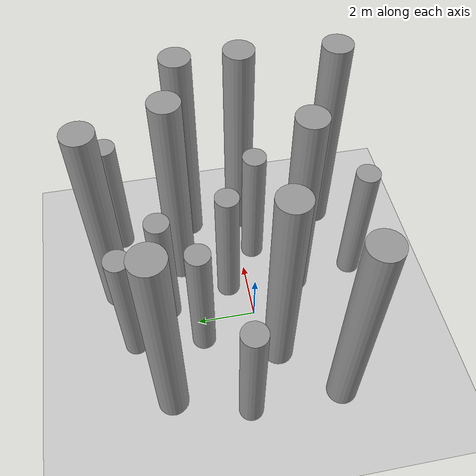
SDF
<sdf version="1.7">
 <world name="default">
  <light name="sun" type="directional">
   <pose>0 0 10 0 -0 0</pose>
   <diffuse>0.8 0.8 0.8 1</diffuse>
   <specular>0.2 0.2 0.2 1</specular>
   <attenuation>
    <range>1000</range>
    <constant>0.9</constant>
    <linear>0.01</linear>
    <quadratic>0.001</quadratic>
   </attenuation>
   <direction>-0.5 0.1 -0.9</direction>
   <spot><inner_angle>0</inner_angle><outer_angle>0</outer_angle><falloff>0</falloff></spot>
  </light>
  <model name="ground_plane">
   <static>1</static>
   <link name="link">
    <collision name="collision">
     <geometry><plane><normal>0 0 1</normal><size>100 100</size></plane></geometry>
     <surface><friction><ode><mu>100</mu><mu2>50</mu2></ode></friction></surface>
    </collision>
    <visual name="visual">
     <cast_shadows>0</cast_shadows>
     <geometry><plane><normal>0 0 1</normal><size>100 100</size></plane></geometry>
     <material>
      <script><uri>file://media/materials/scripts/gazebo.material</uri><name>Gazebo/Grey</name></script>
     </material>
    </visual>
   </link>
  </model>
  <gravity>0 0 -9.8</gravity>
  <magnetic_field>6e-06 2.3e-05 -4.2e-05</magnetic_field>
  <atmosphere type="adiabatic"/>
  <physics type="ode">
   <max_step_size>0.001</max_step_size>
   <real_time_factor>1</real_time_factor>
   <real_time_update_rate>1000</real_time_update_rate>
  </physics>
  <scene><ambient>0.4 0.4 0.4 1</ambient><background>0.7 0.7 0.7 1</background><shadows>1</shadows></scene>
  <audio><device>default</device></audio>
  <spherical_coordinates>
   <surface_model>EARTH_WGS84</surface_model>
   <latitude_deg>0</latitude_deg>
   <longitude_deg>0</longitude_deg>
   <elevation>0</elevation>
   <heading_deg>0</heading_deg>
  </spherical_coordinates>
  <model name="obstalces2"><static>0</static><pose>-1e-06 -0 1.49999 0 -0 0</pose></model>
  <model name="conc">
   <link name="link_0">
    <inertial>
     <mass>1</mass>
     <inertia><ixx>0.145833</ixx><ixy>0</ixy><ixz>0</ixz><iyy>0.145833</iyy><iyz>0</iyz><izz>0.125</izz></inertia>
    </inertial>
    <visual name="visual">
     <geometry><cylinder><radius>0.4</radius><length>0.1</length></cylinder></geometry>
     <material>
      <lighting>1</lighting>
      <script><uri>file://media/materials/scripts/gazebo.material</uri><name>Gazebo/Grey</name></script>
      <shader type="pixel"><normal_map>__default__</normal_map></shader>
      <ambient>0.753 0.11 0.157 1</ambient>
      <diffuse>0.878 0.106 0.141 1</diffuse>
      <specular>0.01 0.01 0.01 1</specular>
      <emissive>0 0 0 1</emissive>
     </material>
    </visual>
    <collision name="collision">
     <geometry><cylinder><radius>0.4</radius><length>0.1</length></cylinder></geometry>
     <surface>
      <friction>
       <ode><mu>1</mu><mu2>1</mu2><fdir1>0 0 0</fdir1><slip1>0</slip1><slip2>0</slip2></ode>
       <torsional>
        <coefficient>1</coefficient>
        <patch_radius>0</patch_radius>
        <surface_radius>0</surface_radius>
        <use_patch_radius>1</use_patch_radius>
        <ode><slip>0</slip></ode>
       </torsional>
      </friction>
      <bounce><restitution_coefficient>0</restitution_coefficient><threshold>1e+06</threshold></bounce>
      <contact>
       <collide_without_contact>0</collide_without_contact>
       <collide_without_contact_bitmask>1</collide_without_contact_bitmask>
       <collide_bitmask>1</collide_bitmask>
       <ode>
        <soft_cfm>0</soft_cfm>
        <soft_erp>0.2</soft_erp>
        <kp>1e+13</kp>
        <kd>1</kd>
        <max_vel>0.01</max_vel>
        <min_depth>0</min_depth>
       </ode>
       <bullet>
        <split_impulse>1</split_impulse>
        <split_impulse_penetration_threshold>-0.01</split_impulse_penetration_threshold>
        <soft_cfm>0</soft_cfm>
        <soft_erp>0.2</soft_erp>
        <kp>1e+13</kp>
        <kd>1</kd>
       </bullet>
      </contact>
     </surface>
    </collision>
   </link>
   <link name="link_1">
    <inertial>
     <mass>1</mass>
     <inertia><ixx>0.145833</ixx><ixy>0</ixy><ixz>0</ixz><iyy>0.145833</iyy><iyz>0</iyz><izz>0.125</izz></inertia>
    </inertial>
    <pose>-0 0 0.05 0 -0 0</pose>
    <visual name="visual">
     <geometry><cylinder><radius>0.05</radius><length>0.001</length></cylinder></geometry>
     <material>
      <lighting>1</lighting>
      <script><uri>file://media/materials/scripts/gazebo.material</uri><name>Gazebo/Grey</name></script>
      <shader type="pixel"><normal_map>__default__</normal_map></shader>
      <ambient>0.149 0.635 0.412 1</ambient>
      <diffuse>0.2 0.82 0.478 1</diffuse>
      <specular>0.01 0.01 0.01 1</specular>
      <emissive>0 0 0 1</emissive>
     </material>
    </visual>
    <collision name="collision">
     <geometry><cylinder><radius>0.05</radius><length>0.001</length></cylinder></geometry>
     <surface>
      <friction>
       <ode><mu>1</mu><mu2>1</mu2><fdir1>0 0 0</fdir1><slip1>0</slip1><slip2>0</slip2></ode>
       <torsional>
        <coefficient>1</coefficient>
        <patch_radius>0</patch_radius>
        <surface_radius>0</surface_radius>
        <use_patch_radius>1</use_patch_radius>
        <ode><slip>0</slip></ode>
       </torsional>
      </friction>
      <bounce><restitution_coefficient>0</restitution_coefficient><threshold>1e+06</threshold></bounce>
      <contact>
       <collide_without_contact>0</collide_without_contact>
       <collide_without_contact_bitmask>1</collide_without_contact_bitmask>
       <collide_bitmask>1</collide_bitmask>
       <ode>
        <soft_cfm>0</soft_cfm>
        <soft_erp>0.2</soft_erp>
        <kp>1e+13</kp>
        <kd>1</kd>
        <max_vel>0.01</max_vel>
        <min_depth>0</min_depth>
       </ode>
       <bullet>
        <split_impulse>1</split_impulse>
        <split_impulse_penetration_threshold>-0.01</split_impulse_penetration_threshold>
        <soft_cfm>0</soft_cfm>
        <soft_erp>0.2</soft_erp>
        <kp>1e+13</kp>
        <kd>1</kd>
       </bullet>
      </contact>
     </surface>
    </collision>
   </link>
   <static>0</static>
   <joint name="joint" type="fixed">
    <parent>link_0</parent>
    <child>conc::link_1</child>
    <pose>0 0 0.1 0 -0 0</pose>
    <axis><xyz>0 0 1</xyz><limit><lower>-1e+16</lower><upper>1e+16</upper></limit></axis>
   </joint>
   <pose>4 3 0.05 0 -0 0</pose>
  </model>
  <model name="unit_cylinder_7_clone_0_clone_0">
   <link name="link">
    <inertial>
     <mass>100</mass>
     <inertia><ixx>14.5833</ixx><ixy>0</ixy><ixz>0</ixz><iyy>14.5833</iyy><iyz>0</iyz><izz>12.5</izz></inertia>
    </inertial>
    <visual name="visual">
     <geometry><cylinder><radius>0.5</radius><length>8</length></cylinder></geometry>
     <material>
      <script><name>Gazebo/Grey</name><uri>file://media/materials/scripts/gazebo.material</uri></script>
      <shader type="pixel"><normal_map>__default__</normal_map></shader>
      <ambient>0.3 0.3 0.3 1</ambient>
      <diffuse>0.7 0.7 0.7 1</diffuse>
      <specular>0.01 0.01 0.01 1</specular>
      <emissive>0 0 0 1</emissive>
     </material>
    </visual>
    <collision name="collision">
     <geometry><cylinder><radius>0.5</radius><length>8</length></cylinder></geometry>
     <surface>
      <friction>
       <ode><mu>1</mu><mu2>1</mu2><fdir1>0 0 0</fdir1><slip1>0</slip1><slip2>0</slip2></ode>
       <torsional>
        <coefficient>1</coefficient>
        <patch_radius>0</patch_radius>
        <surface_radius>0</surface_radius>
        <use_patch_radius>1</use_patch_radius>
        <ode><slip>0</slip></ode>
       </torsional>
      </friction>
      <bounce><restitution_coefficient>0</restitution_coefficient><threshold>1e+06</threshold></bounce>
      <contact>
       <collide_without_contact>0</collide_without_contact>
       <collide_without_contact_bitmask>1</collide_without_contact_bitmask>
       <collide_bitmask>1</collide_bitmask>
       <ode>
        <soft_cfm>0</soft_cfm>
        <soft_erp>0.2</soft_erp>
        <kp>1e+13</kp>
        <kd>1</kd>
        <max_vel>0.01</max_vel>
        <min_depth>0</min_depth>
       </ode>
       <bullet>
        <split_impulse>1</split_impulse>
        <split_impulse_penetration_threshold>-0.01</split_impulse_penetration_threshold>
        <soft_cfm>0</soft_cfm>
        <soft_erp>0.2</soft_erp>
        <kp>1e+13</kp>
        <kd>1</kd>
       </bullet>
      </contact>
     </surface>
    </collision>
   </link>
   <static>0</static>
   <pose>1.68705 4.65043 4 0 -0 0.027632</pose>
  </model>
  <model name="unit_cylinder_7_clone_0_clone_1_clone">
   <link name="link">
    <inertial>
     <mass>100</mass>
     <inertia><ixx>14.5833</ixx><ixy>0</ixy><ixz>0</ixz><iyy>14.5833</iyy><iyz>0</iyz><izz>12.5</izz></inertia>
    </inertial>
    <visual name="visual">
     <geometry><cylinder><radius>0.5</radius><length>8</length></cylinder></geometry>
     <material>
      <script><name>Gazebo/Grey</name><uri>file://media/materials/scripts/gazebo.material</uri></script>
      <shader type="pixel"><normal_map>__default__</normal_map></shader>
      <ambient>0.3 0.3 0.3 1</ambient>
      <diffuse>0.7 0.7 0.7 1</diffuse>
      <specular>0.01 0.01 0.01 1</specular>
      <emissive>0 0 0 1</emissive>
     </material>
    </visual>
    <collision name="collision">
     <geometry><cylinder><radius>0.5</radius><length>8</length></cylinder></geometry>
     <surface>
      <friction>
       <ode><mu>1</mu><mu2>1</mu2><fdir1>0 0 0</fdir1><slip1>0</slip1><slip2>0</slip2></ode>
       <torsional>
        <coefficient>1</coefficient>
        <patch_radius>0</patch_radius>
        <surface_radius>0</surface_radius>
        <use_patch_radius>1</use_patch_radius>
        <ode><slip>0</slip></ode>
       </torsional>
      </friction>
      <bounce><restitution_coefficient>0</restitution_coefficient><threshold>1e+06</threshold></bounce>
      <contact>
       <collide_without_contact>0</collide_without_contact>
       <collide_without_contact_bitmask>1</collide_without_contact_bitmask>
       <collide_bitmask>1</collide_bitmask>
       <ode>
        <soft_cfm>0</soft_cfm>
        <soft_erp>0.2</soft_erp>
        <kp>1e+13</kp>
        <kd>1</kd>
        <max_vel>0.01</max_vel>
        <min_depth>0</min_depth>
       </ode>
       <bullet>
        <split_impulse>1</split_impulse>
        <split_impulse_penetration_threshold>-0.01</split_impulse_penetration_threshold>
        <soft_cfm>0</soft_cfm>
        <soft_erp>0.2</soft_erp>
        <kp>1e+13</kp>
        <kd>1</kd>
       </bullet>
      </contact>
     </surface>
    </collision>
   </link>
   <static>0</static>
   <pose>-2.72618 3.23406 4 0 -0 0.027531</pose>
  </model>
  <model name="unit_cylinder_5_clone_clone">
   <link name="link">
    <inertial>
     <mass>10</mass>
     <inertia><ixx>21.2333</ixx><ixy>0</ixy><ixz>0</ixz><iyy>21.2333</iyy><iyz>0</iyz><izz>0.8</izz></inertia>
    </inertial>
    <visual name="visual">
     <geometry><cylinder><radius>0.4</radius><length>5</length></cylinder></geometry>
     <material>
      <script><name>Gazebo/Grey</name><uri>file://media/materials/scripts/gazebo.material</uri></script>
      <shader type="pixel"><normal_map>__default__</normal_map></shader>
      <ambient>0.3 0.3 0.3 1</ambient>
      <diffuse>0.7 0.7 0.7 1</diffuse>
      <specular>0.01 0.01 0.01 1</specular>
      <emissive>0 0 0 1</emissive>
     </material>
    </visual>
    <collision name="collision">
     <geometry><cylinder><radius>0.4</radius><length>5</length></cylinder></geometry>
     <surface>
      <friction>
       <ode><mu>1</mu><mu2>1</mu2><fdir1>0 0 0</fdir1><slip1>0</slip1><slip2>0</slip2></ode>
       <torsional>
        <coefficient>1</coefficient>
        <patch_radius>0</patch_radius>
        <surface_radius>0</surface_radius>
        <use_patch_radius>1</use_patch_radius>
        <ode><slip>0</slip></ode>
       </torsional>
      </friction>
      <bounce><restitution_coefficient>0</restitution_coefficient><threshold>1e+06</threshold></bounce>
      <contact>
       <collide_without_contact>0</collide_without_contact>
       <collide_without_contact_bitmask>1</collide_without_contact_bitmask>
       <collide_bitmask>1</collide_bitmask>
       <ode>
        <soft_cfm>0</soft_cfm>
        <soft_erp>0.2</soft_erp>
        <kp>1e+13</kp>
        <kd>1</kd>
        <max_vel>0.01</max_vel>
        <min_depth>0</min_depth>
       </ode>
       <bullet>
        <split_impulse>1</split_impulse>
        <split_impulse_penetration_threshold>-0.01</split_impulse_penetration_threshold>
        <soft_cfm>0</soft_cfm>
        <soft_erp>0.2</soft_erp>
        <kp>1e+13</kp>
        <kd>1</kd>
       </bullet>
      </contact>
     </surface>
    </collision>
   </link>
   <static>0</static>
   <pose>4.17132 4.31449 2.5 0 -0 1e-06</pose>
  </model>
  <model name="unit_cylinder_2_clone_clone_clone_0_clone">
   <link name="link">
    <inertial>
     <mass>10</mass>
     <inertia><ixx>21.2333</ixx><ixy>0</ixy><ixz>0</ixz><iyy>21.2333</iyy><iyz>0</iyz><izz>0.8</izz></inertia>
    </inertial>
    <visual name="visual">
     <geometry><cylinder><radius>0.4</radius><length>5</length></cylinder></geometry>
     <material>
      <script><name>Gazebo/Grey</name><uri>file://media/materials/scripts/gazebo.material</uri></script>
      <shader type="pixel"><normal_map>__default__</normal_map></shader>
      <ambient>0.3 0.3 0.3 1</ambient>
      <diffuse>0.7 0.7 0.7 1</diffuse>
      <specular>0.01 0.01 0.01 1</specular>
      <emissive>0 0 0 1</emissive>
     </material>
    </visual>
    <collision name="collision">
     <geometry><cylinder><radius>0.4</radius><length>5</length></cylinder></geometry>
     <surface>
      <friction>
       <ode><mu>1</mu><mu2>1</mu2><fdir1>0 0 0</fdir1><slip1>0</slip1><slip2>0</slip2></ode>
       <torsional>
        <coefficient>1</coefficient>
        <patch_radius>0</patch_radius>
        <surface_radius>0</surface_radius>
        <use_patch_radius>1</use_patch_radius>
        <ode><slip>0</slip></ode>
       </torsional>
      </friction>
      <bounce><restitution_coefficient>0</restitution_coefficient><threshold>1e+06</threshold></bounce>
      <contact>
       <collide_without_contact>0</collide_without_contact>
       <collide_without_contact_bitmask>1</collide_without_contact_bitmask>
       <collide_bitmask>1</collide_bitmask>
       <ode>
        <soft_cfm>0</soft_cfm>
        <soft_erp>0.2</soft_erp>
        <kp>1e+13</kp>
        <kd>1</kd>
        <max_vel>0.01</max_vel>
        <min_depth>0</min_depth>
       </ode>
       <bullet>
        <split_impulse>1</split_impulse>
        <split_impulse_penetration_threshold>-0.01</split_impulse_penetration_threshold>
        <soft_cfm>0</soft_cfm>
        <soft_erp>0.2</soft_erp>
        <kp>1e+13</kp>
        <kd>1</kd>
       </bullet>
      </contact>
     </surface>
    </collision>
   </link>
   <static>0</static>
   <pose>-0.445907 4.21097 2.5 0 -0 1e-06</pose>
  </model>
  <model name="unit_cylinder_0_clone_clone">
   <link name="link">
    <inertial>
     <mass>10</mass>
     <inertia><ixx>21.2333</ixx><ixy>0</ixy><ixz>0</ixz><iyy>21.2333</iyy><iyz>0</iyz><izz>0.8</izz></inertia>
    </inertial>
    <visual name="visual">
     <geometry><cylinder><radius>0.4</radius><length>5</length></cylinder></geometry>
     <material>
      <script><name>Gazebo/Grey</name><uri>file://media/materials/scripts/gazebo.material</uri></script>
      <shader type="pixel"><normal_map>__default__</normal_map></shader>
      <ambient>0.3 0.3 0.3 1</ambient>
      <diffuse>0.7 0.7 0.7 1</diffuse>
      <specular>0.01 0.01 0.01 1</specular>
      <emissive>0 0 0 1</emissive>
     </material>
    </visual>
    <collision name="collision">
     <geometry><cylinder><radius>0.4</radius><length>5</length></cylinder></geometry>
     <surface>
      <friction>
       <ode><mu>1</mu><mu2>1</mu2><fdir1>0 0 0</fdir1><slip1>0</slip1><slip2>0</slip2></ode>
       <torsional>
        <coefficient>1</coefficient>
        <patch_radius>0</patch_radius>
        <surface_radius>0</surface_radius>
        <use_patch_radius>1</use_patch_radius>
        <ode><slip>0</slip></ode>
       </torsional>
      </friction>
      <bounce><restitution_coefficient>0</restitution_coefficient><threshold>1e+06</threshold></bounce>
      <contact>
       <collide_without_contact>0</collide_without_contact>
       <collide_without_contact_bitmask>1</collide_without_contact_bitmask>
       <collide_bitmask>1</collide_bitmask>
       <ode>
        <soft_cfm>0</soft_cfm>
        <soft_erp>0.2</soft_erp>
        <kp>1e+13</kp>
        <kd>1</kd>
        <max_vel>0.01</max_vel>
        <min_depth>0</min_depth>
       </ode>
       <bullet>
        <split_impulse>1</split_impulse>
        <split_impulse_penetration_threshold>-0.01</split_impulse_penetration_threshold>
        <soft_cfm>0</soft_cfm>
        <soft_erp>0.2</soft_erp>
        <kp>1e+13</kp>
        <kd>1</kd>
       </bullet>
      </contact>
     </surface>
    </collision>
   </link>
   <static>0</static>
   <pose>-1.47937 -3.57958 2.5 0 -0 1e-06</pose>
  </model>
  <model name="unit_cylinder_7_clone_clone_clone_clone_clone_0">
   <link name="link">
    <inertial>
     <mass>100</mass>
     <inertia><ixx>14.5833</ixx><ixy>0</ixy><ixz>0</ixz><iyy>14.5833</iyy><iyz>0</iyz><izz>12.5</izz></inertia>
    </inertial>
    <visual name="visual">
     <geometry><cylinder><radius>0.5</radius><length>8</length></cylinder></geometry>
     <material>
      <script><name>Gazebo/Grey</name><uri>file://media/materials/scripts/gazebo.material</uri></script>
      <shader type="pixel"><normal_map>__default__</normal_map></shader>
      <ambient>0.3 0.3 0.3 1</ambient>
      <diffuse>0.7 0.7 0.7 1</diffuse>
      <specular>0.01 0.01 0.01 1</specular>
      <emissive>0 0 0 1</emissive>
     </material>
    </visual>
    <collision name="collision">
     <geometry><cylinder><radius>0.5</radius><length>8</length></cylinder></geometry>
     <surface>
      <friction>
       <ode><mu>1</mu><mu2>1</mu2><fdir1>0 0 0</fdir1><slip1>0</slip1><slip2>0</slip2></ode>
       <torsional>
        <coefficient>1</coefficient>
        <patch_radius>0</patch_radius>
        <surface_radius>0</surface_radius>
        <use_patch_radius>1</use_patch_radius>
        <ode><slip>0</slip></ode>
       </torsional>
      </friction>
      <bounce><restitution_coefficient>0</restitution_coefficient><threshold>1e+06</threshold></bounce>
      <contact>
       <collide_without_contact>0</collide_without_contact>
       <collide_without_contact_bitmask>1</collide_without_contact_bitmask>
       <collide_bitmask>1</collide_bitmask>
       <ode>
        <soft_cfm>0</soft_cfm>
        <soft_erp>0.2</soft_erp>
        <kp>1e+13</kp>
        <kd>1</kd>
        <max_vel>0.01</max_vel>
        <min_depth>0</min_depth>
       </ode>
       <bullet>
        <split_impulse>1</split_impulse>
        <split_impulse_penetration_threshold>-0.01</split_impulse_penetration_threshold>
        <soft_cfm>0</soft_cfm>
        <soft_erp>0.2</soft_erp>
        <kp>1e+13</kp>
        <kd>1</kd>
       </bullet>
      </contact>
     </surface>
    </collision>
   </link>
   <static>0</static>
   <pose>4.16454 -3.29786 4 0 -0 0.027411</pose>
  </model>
  <model name="unit_cylinder_0_clone_clone_clone_0">
   <link name="link">
    <inertial>
     <mass>10</mass>
     <inertia><ixx>21.2333</ixx><ixy>0</ixy><ixz>0</ixz><iyy>21.2333</iyy><iyz>0</iyz><izz>0.8</izz></inertia>
    </inertial>
    <visual name="visual">
     <geometry><cylinder><radius>0.4</radius><length>5</length></cylinder></geometry>
     <material>
      <script><name>Gazebo/Grey</name><uri>file://media/materials/scripts/gazebo.material</uri></script>
      <shader type="pixel"><normal_map>__default__</normal_map></shader>
      <ambient>0.3 0.3 0.3 1</ambient>
      <diffuse>0.7 0.7 0.7 1</diffuse>
      <specular>0.01 0.01 0.01 1</specular>
      <emissive>0 0 0 1</emissive>
     </material>
    </visual>
    <collision name="collision">
     <geometry><cylinder><radius>0.4</radius><length>5</length></cylinder></geometry>
     <surface>
      <friction>
       <ode><mu>1</mu><mu2>1</mu2><fdir1>0 0 0</fdir1><slip1>0</slip1><slip2>0</slip2></ode>
       <torsional>
        <coefficient>1</coefficient>
        <patch_radius>0</patch_radius>
        <surface_radius>0</surface_radius>
        <use_patch_radius>1</use_patch_radius>
        <ode><slip>0</slip></ode>
       </torsional>
      </friction>
      <bounce><restitution_coefficient>0</restitution_coefficient><threshold>1e+06</threshold></bounce>
      <contact>
       <collide_without_contact>0</collide_without_contact>
       <collide_without_contact_bitmask>1</collide_without_contact_bitmask>
       <collide_bitmask>1</collide_bitmask>
       <ode>
        <soft_cfm>0</soft_cfm>
        <soft_erp>0.2</soft_erp>
        <kp>1e+13</kp>
        <kd>1</kd>
        <max_vel>0.01</max_vel>
        <min_depth>0</min_depth>
       </ode>
       <bullet>
        <split_impulse>1</split_impulse>
        <split_impulse_penetration_threshold>-0.01</split_impulse_penetration_threshold>
        <soft_cfm>0</soft_cfm>
        <soft_erp>0.2</soft_erp>
        <kp>1e+13</kp>
        <kd>1</kd>
       </bullet>
      </contact>
     </surface>
    </collision>
   </link>
   <static>0</static>
   <pose>1.44603 -3.90236 2.5 0 -0 1e-06</pose>
  </model>
  <model name="unit_cylinder_7_clone_clone_clone_0_clone">
   <link name="link">
    <inertial>
     <mass>100</mass>
     <inertia><ixx>14.5833</ixx><ixy>0</ixy><ixz>0</ixz><iyy>14.5833</iyy><iyz>0</iyz><izz>12.5</izz></inertia>
    </inertial>
    <visual name="visual">
     <geometry><cylinder><radius>0.5</radius><length>8</length></cylinder></geometry>
     <material>
      <script><name>Gazebo/Grey</name><uri>file://media/materials/scripts/gazebo.material</uri></script>
      <shader type="pixel"><normal_map>__default__</normal_map></shader>
      <ambient>0.3 0.3 0.3 1</ambient>
      <diffuse>0.7 0.7 0.7 1</diffuse>
      <specular>0.01 0.01 0.01 1</specular>
      <emissive>0 0 0 1</emissive>
     </material>
    </visual>
    <collision name="collision">
     <geometry><cylinder><radius>0.5</radius><length>8</length></cylinder></geometry>
     <surface>
      <friction>
       <ode><mu>1</mu><mu2>1</mu2><fdir1>0 0 0</fdir1><slip1>0</slip1><slip2>0</slip2></ode>
       <torsional>
        <coefficient>1</coefficient>
        <patch_radius>0</patch_radius>
        <surface_radius>0</surface_radius>
        <use_patch_radius>1</use_patch_radius>
        <ode><slip>0</slip></ode>
       </torsional>
      </friction>
      <bounce><restitution_coefficient>0</restitution_coefficient><threshold>1e+06</threshold></bounce>
      <contact>
       <collide_without_contact>0</collide_without_contact>
       <collide_without_contact_bitmask>1</collide_without_contact_bitmask>
       <collide_bitmask>1</collide_bitmask>
       <ode>
        <soft_cfm>0</soft_cfm>
        <soft_erp>0.2</soft_erp>
        <kp>1e+13</kp>
        <kd>1</kd>
        <max_vel>0.01</max_vel>
        <min_depth>0</min_depth>
       </ode>
       <bullet>
        <split_impulse>1</split_impulse>
        <split_impulse_penetration_threshold>-0.01</split_impulse_penetration_threshold>
        <soft_cfm>0</soft_cfm>
        <soft_erp>0.2</soft_erp>
        <kp>1e+13</kp>
        <kd>1</kd>
       </bullet>
      </contact>
     </surface>
    </collision>
   </link>
   <static>0</static>
   <pose>-3.36974 -2.23879 4 0 -0 0.027696</pose>
  </model>
  <model name="unit_cylinder_2_clone_clone_clone_0_clone_clone">
   <link name="link">
    <inertial>
     <mass>10</mass>
     <inertia><ixx>21.2333</ixx><ixy>0</ixy><ixz>0</ixz><iyy>21.2333</iyy><iyz>0</iyz><izz>0.8</izz></inertia>
    </inertial>
    <visual name="visual">
     <geometry><cylinder><radius>0.4</radius><length>5</length></cylinder></geometry>
     <material>
      <script><name>Gazebo/Grey</name><uri>file://media/materials/scripts/gazebo.material</uri></script>
      <shader type="pixel"><normal_map>__default__</normal_map></shader>
      <ambient>0.3 0.3 0.3 1</ambient>
      <diffuse>0.7 0.7 0.7 1</diffuse>
      <specular>0.01 0.01 0.01 1</specular>
      <emissive>0 0 0 1</emissive>
     </material>
    </visual>
    <collision name="collision">
     <geometry><cylinder><radius>0.4</radius><length>5</length></cylinder></geometry>
     <surface>
      <friction>
       <ode><mu>1</mu><mu2>1</mu2><fdir1>0 0 0</fdir1><slip1>0</slip1><slip2>0</slip2></ode>
       <torsional>
        <coefficient>1</coefficient>
        <patch_radius>0</patch_radius>
        <surface_radius>0</surface_radius>
        <use_patch_radius>1</use_patch_radius>
        <ode><slip>0</slip></ode>
       </torsional>
      </friction>
      <bounce><restitution_coefficient>0</restitution_coefficient><threshold>1e+06</threshold></bounce>
      <contact>
       <collide_without_contact>0</collide_without_contact>
       <collide_without_contact_bitmask>1</collide_without_contact_bitmask>
       <collide_bitmask>1</collide_bitmask>
       <ode>
        <soft_cfm>0</soft_cfm>
        <soft_erp>0.2</soft_erp>
        <kp>1e+13</kp>
        <kd>1</kd>
        <max_vel>0.01</max_vel>
        <min_depth>0</min_depth>
       </ode>
       <bullet>
        <split_impulse>1</split_impulse>
        <split_impulse_penetration_threshold>-0.01</split_impulse_penetration_threshold>
        <soft_cfm>0</soft_cfm>
        <soft_erp>0.2</soft_erp>
        <kp>1e+13</kp>
        <kd>1</kd>
       </bullet>
      </contact>
     </surface>
    </collision>
   </link>
   <static>0</static>
   <pose>0.695509 2.93596 2.5 0 -0 1e-06</pose>
  </model>
  <model name="unit_cylinder_0_clone_clone_clone_clone_0_clone_clone">
   <link name="link">
    <inertial>
     <mass>10</mass>
     <inertia><ixx>21.2333</ixx><ixy>0</ixy><ixz>0</ixz><iyy>21.2333</iyy><iyz>0</iyz><izz>0.8</izz></inertia>
    </inertial>
    <visual name="visual">
     <geometry><cylinder><radius>0.4</radius><length>5</length></cylinder></geometry>
     <material>
      <script><name>Gazebo/Grey</name><uri>file://media/materials/scripts/gazebo.material</uri></script>
      <shader type="pixel"><normal_map>__default__</normal_map></shader>
      <ambient>0.3 0.3 0.3 1</ambient>
      <diffuse>0.7 0.7 0.7 1</diffuse>
      <specular>0.01 0.01 0.01 1</specular>
      <emissive>0 0 0 1</emissive>
     </material>
    </visual>
    <collision name="collision">
     <geometry><cylinder><radius>0.4</radius><length>5</length></cylinder></geometry>
     <surface>
      <friction>
       <ode><mu>1</mu><mu2>1</mu2><fdir1>0 0 0</fdir1><slip1>0</slip1><slip2>0</slip2></ode>
       <torsional>
        <coefficient>1</coefficient>
        <patch_radius>0</patch_radius>
        <surface_radius>0</surface_radius>
        <use_patch_radius>1</use_patch_radius>
        <ode><slip>0</slip></ode>
       </torsional>
      </friction>
      <bounce><restitution_coefficient>0</restitution_coefficient><threshold>1e+06</threshold></bounce>
      <contact>
       <collide_without_contact>0</collide_without_contact>
       <collide_without_contact_bitmask>1</collide_without_contact_bitmask>
       <collide_bitmask>1</collide_bitmask>
       <ode>
        <soft_cfm>0</soft_cfm>
        <soft_erp>0.2</soft_erp>
        <kp>1e+13</kp>
        <kd>1</kd>
        <max_vel>0.01</max_vel>
        <min_depth>0</min_depth>
       </ode>
       <bullet>
        <split_impulse>1</split_impulse>
        <split_impulse_penetration_threshold>-0.01</split_impulse_penetration_threshold>
        <soft_cfm>0</soft_cfm>
        <soft_erp>0.2</soft_erp>
        <kp>1e+13</kp>
        <kd>1</kd>
       </bullet>
      </contact>
     </surface>
    </collision>
   </link>
   <static>0</static>
   <pose>-0.666522 1.90321 2.5 0 -0 1e-06</pose>
  </model>
  <model name="unit_cylinder_7_clone_clone_clone_clone_clone_1_clone_clone_clone">
   <link name="link">
    <inertial>
     <mass>100</mass>
     <inertia><ixx>14.5833</ixx><ixy>0</ixy><ixz>0</ixz><iyy>14.5833</iyy><iyz>0</iyz><izz>12.5</izz></inertia>
    </inertial>
    <visual name="visual">
     <geometry><cylinder><radius>0.5</radius><length>8</length></cylinder></geometry>
     <material>
      <script><name>Gazebo/Grey</name><uri>file://media/materials/scripts/gazebo.material</uri></script>
      <shader type="pixel"><normal_map>__default__</normal_map></shader>
      <ambient>0.3 0.3 0.3 1</ambient>
      <diffuse>0.7 0.7 0.7 1</diffuse>
      <specular>0.01 0.01 0.01 1</specular>
      <emissive>0 0 0 1</emissive>
     </material>
    </visual>
    <collision name="collision">
     <geometry><cylinder><radius>0.5</radius><length>8</length></cylinder></geometry>
     <surface>
      <friction>
       <ode><mu>1</mu><mu2>1</mu2><fdir1>0 0 0</fdir1><slip1>0</slip1><slip2>0</slip2></ode>
       <torsional>
        <coefficient>1</coefficient>
        <patch_radius>0</patch_radius>
        <surface_radius>0</surface_radius>
        <use_patch_radius>1</use_patch_radius>
        <ode><slip>0</slip></ode>
       </torsional>
      </friction>
      <bounce><restitution_coefficient>0</restitution_coefficient><threshold>1e+06</threshold></bounce>
      <contact>
       <collide_without_contact>0</collide_without_contact>
       <collide_without_contact_bitmask>1</collide_without_contact_bitmask>
       <collide_bitmask>1</collide_bitmask>
       <ode>
        <soft_cfm>0</soft_cfm>
        <soft_erp>0.2</soft_erp>
        <kp>1e+13</kp>
        <kd>1</kd>
        <max_vel>0.01</max_vel>
        <min_depth>0</min_depth>
       </ode>
       <bullet>
        <split_impulse>1</split_impulse>
        <split_impulse_penetration_threshold>-0.01</split_impulse_penetration_threshold>
        <soft_cfm>0</soft_cfm>
        <soft_erp>0.2</soft_erp>
        <kp>1e+13</kp>
        <kd>1</kd>
       </bullet>
      </contact>
     </surface>
    </collision>
   </link>
   <static>0</static>
   <pose>-1.61043 -0.505486 4 0 -0 0.0265</pose>
  </model>
  <model name="unit_cylinder_0_clone_clone_clone_clone_0_clone_clone_clone">
   <link name="link">
    <inertial>
     <mass>10</mass>
     <inertia><ixx>21.2333</ixx><ixy>0</ixy><ixz>0</ixz><iyy>21.2333</iyy><iyz>0</iyz><izz>0.8</izz></inertia>
    </inertial>
    <visual name="visual">
     <geometry><cylinder><radius>0.4</radius><length>5</length></cylinder></geometry>
     <material>
      <script><name>Gazebo/Grey</name><uri>file://media/materials/scripts/gazebo.material</uri></script>
      <shader type="pixel"><normal_map>__default__</normal_map></shader>
      <ambient>0.3 0.3 0.3 1</ambient>
      <diffuse>0.7 0.7 0.7 1</diffuse>
      <specular>0.01 0.01 0.01 1</specular>
      <emissive>0 0 0 1</emissive>
     </material>
    </visual>
    <collision name="collision">
     <geometry><cylinder><radius>0.4</radius><length>5</length></cylinder></geometry>
     <surface>
      <friction>
       <ode><mu>1</mu><mu2>1</mu2><fdir1>0 0 0</fdir1><slip1>0</slip1><slip2>0</slip2></ode>
       <torsional>
        <coefficient>1</coefficient>
        <patch_radius>0</patch_radius>
        <surface_radius>0</surface_radius>
        <use_patch_radius>1</use_patch_radius>
        <ode><slip>0</slip></ode>
       </torsional>
      </friction>
      <bounce><restitution_coefficient>0</restitution_coefficient><threshold>1e+06</threshold></bounce>
      <contact>
       <collide_without_contact>0</collide_without_contact>
       <collide_without_contact_bitmask>1</collide_without_contact_bitmask>
       <collide_bitmask>1</collide_bitmask>
       <ode>
        <soft_cfm>0</soft_cfm>
        <soft_erp>0.2</soft_erp>
        <kp>1e+13</kp>
        <kd>1</kd>
        <max_vel>0.01</max_vel>
        <min_depth>0</min_depth>
       </ode>
       <bullet>
        <split_impulse>1</split_impulse>
        <split_impulse_penetration_threshold>-0.01</split_impulse_penetration_threshold>
        <soft_cfm>0</soft_cfm>
        <soft_erp>0.2</soft_erp>
        <kp>1e+13</kp>
        <kd>1</kd>
       </bullet>
      </contact>
     </surface>
    </collision>
   </link>
   <static>0</static>
   <pose>-3.46789 0.807121 2.5 0 -0 1e-06</pose>
  </model>
  <model name="unit_cylinder_7_clone_clone_clone_2_clone_clone">
   <link name="link">
    <inertial>
     <mass>100</mass>
     <inertia><ixx>14.5833</ixx><ixy>0</ixy><ixz>0</ixz><iyy>14.5833</iyy><iyz>0</iyz><izz>12.5</izz></inertia>
    </inertial>
    <visual name="visual">
     <geometry><cylinder><radius>0.5</radius><length>8</length></cylinder></geometry>
     <material>
      <script><name>Gazebo/Grey</name><uri>file://media/materials/scripts/gazebo.material</uri></script>
      <shader type="pixel"><normal_map>__default__</normal_map></shader>
      <ambient>0.3 0.3 0.3 1</ambient>
      <diffuse>0.7 0.7 0.7 1</diffuse>
      <specular>0.01 0.01 0.01 1</specular>
      <emissive>0 0 0 1</emissive>
     </material>
    </visual>
    <collision name="collision">
     <geometry><cylinder><radius>0.5</radius><length>8</length></cylinder></geometry>
     <surface>
      <friction>
       <ode><mu>1</mu><mu2>1</mu2><fdir1>0 0 0</fdir1><slip1>0</slip1><slip2>0</slip2></ode>
       <torsional>
        <coefficient>1</coefficient>
        <patch_radius>0</patch_radius>
        <surface_radius>0</surface_radius>
        <use_patch_radius>1</use_patch_radius>
        <ode><slip>0</slip></ode>
       </torsional>
      </friction>
      <bounce><restitution_coefficient>0</restitution_coefficient><threshold>1e+06</threshold></bounce>
      <contact>
       <collide_without_contact>0</collide_without_contact>
       <collide_without_contact_bitmask>1</collide_without_contact_bitmask>
       <collide_bitmask>1</collide_bitmask>
       <ode>
        <soft_cfm>0</soft_cfm>
        <soft_erp>0.2</soft_erp>
        <kp>1e+13</kp>
        <kd>1</kd>
        <max_vel>0.01</max_vel>
        <min_depth>0</min_depth>
       </ode>
       <bullet>
        <split_impulse>1</split_impulse>
        <split_impulse_penetration_threshold>-0.01</split_impulse_penetration_threshold>
        <soft_cfm>0</soft_cfm>
        <soft_erp>0.2</soft_erp>
        <kp>1e+13</kp>
        <kd>1</kd>
       </bullet>
      </contact>
     </surface>
    </collision>
   </link>
   <static>0</static>
   <pose>4.43902 1.68117 4 0 -0 0.027243</pose>
  </model>
  <model name="unit_cylinder_7_clone_clone_clone_2_clone_clone_0">
   <link name="link">
    <inertial>
     <mass>100</mass>
     <inertia><ixx>14.5833</ixx><ixy>0</ixy><ixz>0</ixz><iyy>14.5833</iyy><iyz>0</iyz><izz>12.5</izz></inertia>
    </inertial>
    <visual name="visual">
     <geometry><cylinder><radius>0.5</radius><length>8</length></cylinder></geometry>
     <material>
      <script><name>Gazebo/Grey</name><uri>file://media/materials/scripts/gazebo.material</uri></script>
      <shader type="pixel"><normal_map>__default__</normal_map></shader>
      <ambient>0.3 0.3 0.3 1</ambient>
      <diffuse>0.7 0.7 0.7 1</diffuse>
      <specular>0.01 0.01 0.01 1</specular>
      <emissive>0 0 0 1</emissive>
     </material>
    </visual>
    <collision name="collision">
     <geometry><cylinder><radius>0.5</radius><length>8</length></cylinder></geometry>
     <surface>
      <friction>
       <ode><mu>1</mu><mu2>1</mu2><fdir1>0 0 0</fdir1><slip1>0</slip1><slip2>0</slip2></ode>
       <torsional>
        <coefficient>1</coefficient>
        <patch_radius>0</patch_radius>
        <surface_radius>0</surface_radius>
        <use_patch_radius>1</use_patch_radius>
        <ode><slip>0</slip></ode>
       </torsional>
      </friction>
      <bounce><restitution_coefficient>0</restitution_coefficient><threshold>1e+06</threshold></bounce>
      <contact>
       <collide_without_contact>0</collide_without_contact>
       <collide_without_contact_bitmask>1</collide_without_contact_bitmask>
       <collide_bitmask>1</collide_bitmask>
       <ode>
        <soft_cfm>0</soft_cfm>
        <soft_erp>0.2</soft_erp>
        <kp>1e+13</kp>
        <kd>1</kd>
        <max_vel>0.01</max_vel>
        <min_depth>0</min_depth>
       </ode>
       <bullet>
        <split_impulse>1</split_impulse>
        <split_impulse_penetration_threshold>-0.01</split_impulse_penetration_threshold>
        <soft_cfm>0</soft_cfm>
        <soft_erp>0.2</soft_erp>
        <kp>1e+13</kp>
        <kd>1</kd>
       </bullet>
      </contact>
     </surface>
    </collision>
   </link>
   <static>0</static>
   <pose>4.43814 -0.273785 4 0 -0 0.027399</pose>
  </model>
  <model name="unit_cylinder_7_clone_clone_clone_1_clone_clone_clone_clone_clone_clone_clone_clone_clone_clone_clone_clone_clone">
   <link name="link">
    <inertial>
     <mass>100</mass>
     <inertia><ixx>14.5833</ixx><ixy>0</ixy><ixz>0</ixz><iyy>14.5833</iyy><iyz>0</iyz><izz>12.5</izz></inertia>
    </inertial>
    <visual name="visual">
     <geometry><cylinder><radius>0.5</radius><length>8</length></cylinder></geometry>
     <material>
      <script><name>Gazebo/Grey</name><uri>file://media/materials/scripts/gazebo.material</uri></script>
      <shader type="pixel"><normal_map>__default__</normal_map></shader>
      <ambient>0.3 0.3 0.3 1</ambient>
      <diffuse>0.7 0.7 0.7 1</diffuse>
      <specular>0.01 0.01 0.01 1</specular>
      <emissive>0 0 0 1</emissive>
     </material>
    </visual>
    <collision name="collision">
     <geometry><cylinder><radius>0.5</radius><length>8</length></cylinder></geometry>
     <surface>
      <friction>
       <ode><mu>1</mu><mu2>1</mu2><fdir1>0 0 0</fdir1><slip1>0</slip1><slip2>0</slip2></ode>
       <torsional>
        <coefficient>1</coefficient>
        <patch_radius>0</patch_radius>
        <surface_radius>0</surface_radius>
        <use_patch_radius>1</use_patch_radius>
        <ode><slip>0</slip></ode>
       </torsional>
      </friction>
      <bounce><restitution_coefficient>0</restitution_coefficient><threshold>1e+06</threshold></bounce>
      <contact>
       <collide_without_contact>0</collide_without_contact>
       <collide_without_contact_bitmask>1</collide_without_contact_bitmask>
       <collide_bitmask>1</collide_bitmask>
       <ode>
        <soft_cfm>0</soft_cfm>
        <soft_erp>0.2</soft_erp>
        <kp>1e+13</kp>
        <kd>1</kd>
        <max_vel>0.01</max_vel>
        <min_depth>0</min_depth>
       </ode>
       <bullet>
        <split_impulse>1</split_impulse>
        <split_impulse_penetration_threshold>-0.01</split_impulse_penetration_threshold>
        <soft_cfm>0</soft_cfm>
        <soft_erp>0.2</soft_erp>
        <kp>1e+13</kp>
        <kd>1</kd>
       </bullet>
      </contact>
     </surface>
    </collision>
   </link>
   <static>0</static>
   <pose>2.50102 2.22923 4 0 -0 0.026232</pose>
  </model>
  <model name="unit_cylinder_0_clone_clone_clone_clone_0_clone_clone_0">
   <link name="link">
    <inertial>
     <mass>10</mass>
     <inertia><ixx>21.2333</ixx><ixy>0</ixy><ixz>0</ixz><iyy>21.2333</iyy><iyz>0</iyz><izz>0.8</izz></inertia>
    </inertial>
    <visual name="visual">
     <geometry><cylinder><radius>0.4</radius><length>5</length></cylinder></geometry>
     <material>
      <script><name>Gazebo/Grey</name><uri>file://media/materials/scripts/gazebo.material</uri></script>
      <shader type="pixel"><normal_map>__default__</normal_map></shader>
      <ambient>0.3 0.3 0.3 1</ambient>
      <diffuse>0.7 0.7 0.7 1</diffuse>
      <specular>0.01 0.01 0.01 1</specular>
      <emissive>0 0 0 1</emissive>
     </material>
    </visual>
    <collision name="collision">
     <geometry><cylinder><radius>0.4</radius><length>5</length></cylinder></geometry>
     <surface>
      <friction>
       <ode><mu>1</mu><mu2>1</mu2><fdir1>0 0 0</fdir1><slip1>0</slip1><slip2>0</slip2></ode>
       <torsional>
        <coefficient>1</coefficient>
        <patch_radius>0</patch_radius>
        <surface_radius>0</surface_radius>
        <use_patch_radius>1</use_patch_radius>
        <ode><slip>0</slip></ode>
       </torsional>
      </friction>
      <bounce><restitution_coefficient>0</restitution_coefficient><threshold>1e+06</threshold></bounce>
      <contact>
       <collide_without_contact>0</collide_without_contact>
       <collide_without_contact_bitmask>1</collide_without_contact_bitmask>
       <collide_bitmask>1</collide_bitmask>
       <ode>
        <soft_cfm>0</soft_cfm>
        <soft_erp>0.2</soft_erp>
        <kp>1e+13</kp>
        <kd>1</kd>
        <max_vel>0.01</max_vel>
        <min_depth>0</min_depth>
       </ode>
       <bullet>
        <split_impulse>1</split_impulse>
        <split_impulse_penetration_threshold>-0.01</split_impulse_penetration_threshold>
        <soft_cfm>0</soft_cfm>
        <soft_erp>0.2</soft_erp>
        <kp>1e+13</kp>
        <kd>1</kd>
       </bullet>
      </contact>
     </surface>
    </collision>
   </link>
   <static>0</static>
   <pose>2.82338 -0.491884 2.49999 -0 -0 -0.001187</pose>
  </model>
  <model name="unit_cylinder_0_clone_clone_clone_clone_0_clone_clone_0_clone">
   <link name="link">
    <inertial>
     <mass>10</mass>
     <inertia><ixx>21.2333</ixx><ixy>0</ixy><ixz>0</ixz><iyy>21.2333</iyy><iyz>0</iyz><izz>0.8</izz></inertia>
    </inertial>
    <visual name="visual">
     <geometry><cylinder><radius>0.4</radius><length>5</length></cylinder></geometry>
     <material>
      <script><name>Gazebo/Grey</name><uri>file://media/materials/scripts/gazebo.material</uri></script>
      <shader type="pixel"><normal_map>__default__</normal_map></shader>
      <ambient>0.3 0.3 0.3 1</ambient>
      <diffuse>0.7 0.7 0.7 1</diffuse>
      <specular>0.01 0.01 0.01 1</specular>
      <emissive>0 0 0 1</emissive>
     </material>
    </visual>
    <collision name="collision">
     <geometry><cylinder><radius>0.4</radius><length>5</length></cylinder></geometry>
     <surface>
      <friction>
       <ode><mu>1</mu><mu2>1</mu2><fdir1>0 0 0</fdir1><slip1>0</slip1><slip2>0</slip2></ode>
       <torsional>
        <coefficient>1</coefficient>
        <patch_radius>0</patch_radius>
        <surface_radius>0</surface_radius>
        <use_patch_radius>1</use_patch_radius>
        <ode><slip>0</slip></ode>
       </torsional>
      </friction>
      <bounce><restitution_coefficient>0</restitution_coefficient><threshold>1e+06</threshold></bounce>
      <contact>
       <collide_without_contact>0</collide_without_contact>
       <collide_without_contact_bitmask>1</collide_without_contact_bitmask>
       <collide_bitmask>1</collide_bitmask>
       <ode>
        <soft_cfm>0</soft_cfm>
        <soft_erp>0.2</soft_erp>
        <kp>1e+13</kp>
        <kd>1</kd>
        <max_vel>0.01</max_vel>
        <min_depth>0</min_depth>
       </ode>
       <bullet>
        <split_impulse>1</split_impulse>
        <split_impulse_penetration_threshold>-0.01</split_impulse_penetration_threshold>
        <soft_cfm>0</soft_cfm>
        <soft_erp>0.2</soft_erp>
        <kp>1e+13</kp>
        <kd>1</kd>
       </bullet>
      </contact>
     </surface>
    </collision>
   </link>
   <static>0</static>
   <pose>1.28602 0.693105 2.49999 -0 -0 -0.001187</pose>
  </model>
  <model name="unit_cylinder_7_clone_clone_clone_0_clone_0">
   <link name="link">
    <inertial>
     <mass>100</mass>
     <inertia><ixx>14.5833</ixx><ixy>0</ixy><ixz>0</ixz><iyy>14.5833</iyy><iyz>0</iyz><izz>12.5</izz></inertia>
    </inertial>
    <visual name="visual">
     <geometry><cylinder><radius>0.5</radius><length>8</length></cylinder></geometry>
     <material>
      <script><name>Gazebo/Grey</name><uri>file://media/materials/scripts/gazebo.material</uri></script>
      <shader type="pixel"><normal_map>__default__</normal_map></shader>
      <ambient>0.3 0.3 0.3 1</ambient>
      <diffuse>0.7 0.7 0.7 1</diffuse>
      <specular>0.01 0.01 0.01 1</specular>
      <emissive>0 0 0 1</emissive>
     </material>
    </visual>
    <collision name="collision">
     <geometry><cylinder><radius>0.5</radius><length>8</length></cylinder></geometry>
     <surface>
      <friction>
       <ode><mu>1</mu><mu2>1</mu2><fdir1>0 0 0</fdir1><slip1>0</slip1><slip2>0</slip2></ode>
       <torsional>
        <coefficient>1</coefficient>
        <patch_radius>0</patch_radius>
        <surface_radius>0</surface_radius>
        <use_patch_radius>1</use_patch_radius>
        <ode><slip>0</slip></ode>
       </torsional>
      </friction>
      <bounce><restitution_coefficient>0</restitution_coefficient><threshold>1e+06</threshold></bounce>
      <contact>
       <collide_without_contact>0</collide_without_contact>
       <collide_without_contact_bitmask>1</collide_without_contact_bitmask>
       <collide_bitmask>1</collide_bitmask>
       <ode>
        <soft_cfm>0</soft_cfm>
        <soft_erp>0.2</soft_erp>
        <kp>1e+13</kp>
        <kd>1</kd>
        <max_vel>0.01</max_vel>
        <min_depth>0</min_depth>
       </ode>
       <bullet>
        <split_impulse>1</split_impulse>
        <split_impulse_penetration_threshold>-0.01</split_impulse_penetration_threshold>
        <soft_cfm>0</soft_cfm>
        <soft_erp>0.2</soft_erp>
        <kp>1e+13</kp>
        <kd>1</kd>
       </bullet>
      </contact>
     </surface>
    </collision>
   </link>
   <static>0</static>
   <pose>1.14691 -1.70452 3.99999 0 -0 0.026976</pose>
  </model>
 </world>
</sdf>
